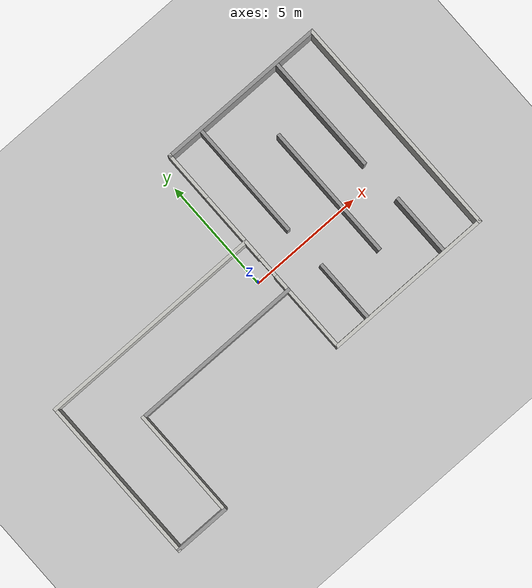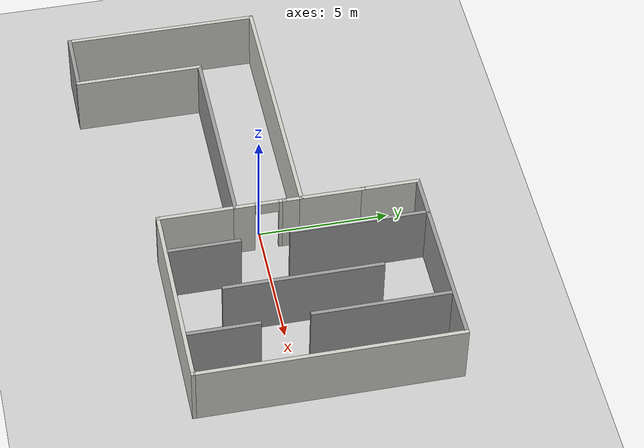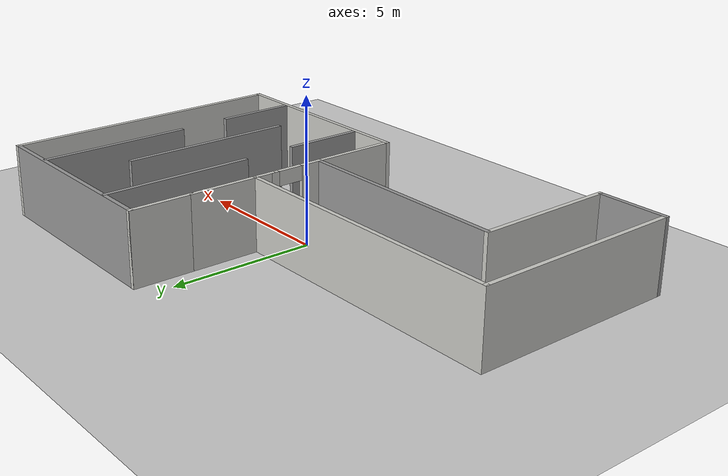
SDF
<sdf version="1.7">
 <world name="default">
  <model name="ground_plane">
   <static>1</static>
   <link name="link">
    <collision name="collision">
     <geometry><plane><normal>0 0 1</normal><size>100 100</size></plane></geometry>
     <surface><friction><ode><mu>100</mu><mu2>50</mu2></ode></friction></surface>
    </collision>
    <visual name="visual">
     <cast_shadows>0</cast_shadows>
     <geometry><plane><normal>0 0 1</normal><size>100 100</size></plane></geometry>
     <material>
      <script><uri>file://media/materials/scripts/gazebo.material</uri><name>Gazebo/Grey</name></script>
     </material>
    </visual>
   </link>
  </model>
  <light name="sun" type="directional">
   <pose>0 0 10 0 -0 0</pose>
   <diffuse>0.8 0.8 0.8 1</diffuse>
   <specular>0.2 0.2 0.2 1</specular>
   <attenuation>
    <range>1000</range>
    <constant>0.9</constant>
    <linear>0.01</linear>
    <quadratic>0.001</quadratic>
   </attenuation>
   <direction>-0.5 0.1 -0.9</direction>
   <spot><inner_angle>0</inner_angle><outer_angle>0</outer_angle><falloff>0</falloff></spot>
  </light>
  <scene><shadows>0</shadows><ambient>0.4 0.4 0.4 1</ambient><background>0.7 0.7 0.7 1</background></scene>
  <physics type="ode">
   <real_time_update_rate>1000</real_time_update_rate>
   <max_step_size>0.001</max_step_size>
   <real_time_factor>1</real_time_factor>
   <ode>
    <solver>
     <type>quick</type>
     <iters>150</iters>
     <precon_iters>0</precon_iters>
     <sor>1.4</sor>
     <use_dynamic_moi_rescaling>1</use_dynamic_moi_rescaling>
    </solver>
    <constraints>
     <cfm>1e-05</cfm>
     <erp>0.2</erp>
     <contact_max_correcting_vel>2000</contact_max_correcting_vel>
     <contact_surface_layer>0.01</contact_surface_layer>
    </constraints>
   </ode>
  </physics>
  <model name="turtlebot3_world"><static>1</static></model>
  <gravity>0 0 -9.8</gravity>
  <magnetic_field>6e-06 2.3e-05 -4.2e-05</magnetic_field>
  <atmosphere type="adiabatic"/>
  <audio><device>default</device></audio>
  <spherical_coordinates>
   <surface_model>EARTH_WGS84</surface_model>
   <latitude_deg>0</latitude_deg>
   <longitude_deg>0</longitude_deg>
   <elevation>0</elevation>
   <heading_deg>0</heading_deg>
  </spherical_coordinates>
  <model name="corridor.world">
   <pose>-0.5875 0.07602 0 0 -0 0</pose>
   <link name="Wall_23">
    <collision name="Wall_23_Collision">
     <geometry><box><size>7.41885 0.15 2.5</size></box></geometry>
     <pose>0 0 1.25 0 -0 0</pose>
    </collision>
    <visual name="Wall_23_Visual">
     <pose>0 0 1.25 0 -0 0</pose>
     <geometry><box><size>7.41885 0.15 2.5</size></box></geometry>
     <material>
      <script><uri>file://media/materials/scripts/gazebo.material</uri><name>Gazebo/CeilingTiled</name></script>
      <ambient>1 1 1 1</ambient>
     </material>
     <meta><layer>0</layer></meta>
    </visual>
    <pose>-8.6 -2.22468 0 0 -0 1.5708</pose>
   </link>
   <link name="Wall_24">
    <collision name="Wall_24_Collision">
     <geometry><box><size>10 0.15 2.5</size></box></geometry>
     <pose>0 0 1.25 0 -0 0</pose>
    </collision>
    <visual name="Wall_24_Visual">
     <pose>0 0 1.25 0 -0 0</pose>
     <geometry><box><size>10 0.15 2.5</size></box></geometry>
     <material>
      <script><uri>file://media/materials/scripts/gazebo.material</uri><name>Gazebo/CeilingTiled</name></script>
      <ambient>1 1 1 1</ambient>
     </material>
     <meta><layer>0</layer></meta>
    </visual>
    <pose>-3.675 1.40958 0 0 -0 -4.9e-05</pose>
   </link>
   <link name="Wall_26">
    <collision name="Wall_26_Collision">
     <geometry><box><size>7.65 0.15 2.5</size></box></geometry>
     <pose>0 0 1.25 0 -0 0</pose>
    </collision>
    <visual name="Wall_26_Visual">
     <pose>0 0 1.25 0 -0 0</pose>
     <geometry><box><size>7.65 0.15 2.5</size></box></geometry>
     <material>
      <script><uri>file://media/materials/scripts/gazebo.material</uri><name>Gazebo/Grey</name></script>
      <ambient>1 1 1 1</ambient>
     </material>
     <meta><layer>0</layer></meta>
    </visual>
    <pose>-2.5 -1.09018 0 0 -0 0</pose>
   </link>
   <link name="Wall_29">
    <pose>1.25 -0.165179 0 0 -0 1.5708</pose>
    <visual name="Wall_29_Visual_0">
     <pose>-0.592765 0 1.25 0 -0 0</pose>
     <geometry><box><size>0.814469 0.15 2.5</size></box></geometry>
     <material>
      <script><uri>file://media/materials/scripts/gazebo.material</uri><name>Gazebo/CeilingTiled</name></script>
      <ambient>1 1 1 1</ambient>
     </material>
     <meta><layer>0</layer></meta>
    </visual>
    <collision name="Wall_29_Collision_0">
     <geometry><box><size>0.814469 0.15 2.5</size></box></geometry>
     <pose>-0.592765 0 1.25 0 -0 0</pose>
    </collision>
    <visual name="Wall_29_Visual_1">
     <pose>0.857235 0 1.25 0 -0 0</pose>
     <geometry><box><size>0.285531 0.15 2.5</size></box></geometry>
     <material>
      <script><uri>file://media/materials/scripts/gazebo.material</uri><name>Gazebo/CeilingTiled</name></script>
      <ambient>1 1 1 1</ambient>
     </material>
     <meta><layer>0</layer></meta>
    </visual>
    <collision name="Wall_29_Collision_1">
     <geometry><box><size>0.285531 0.15 2.5</size></box></geometry>
     <pose>0.857235 0 1.25 0 -0 0</pose>
    </collision>
    <visual name="Wall_29_Visual_2">
     <pose>0.264469 0 2.25 0 -0 0</pose>
     <geometry><box><size>0.9 0.15 0.5</size></box></geometry>
     <material>
      <script><uri>file://media/materials/scripts/gazebo.material</uri><name>Gazebo/CeilingTiled</name></script>
      <ambient>1 1 1 1</ambient>
     </material>
     <meta><layer>0</layer></meta>
    </visual>
    <collision name="Wall_29_Collision_2">
     <geometry><box><size>0.9 0.15 0.5</size></box></geometry>
     <pose>0.264469 0 2.25 0 -0 0</pose>
    </collision>
   </link>
   <link name="Wall_31">
    <collision name="Wall_31_Collision">
     <geometry><box><size>0.799522 0.15 2.5</size></box></geometry>
     <pose>0 0 1.25 0 -0 0</pose>
    </collision>
    <visual name="Wall_31_Visual">
     <pose>0 0 1.25 0 -0 0</pose>
     <geometry><box><size>0.799522 0.15 2.5</size></box></geometry>
     <material>
      <script><uri>file://media/materials/scripts/gazebo.material</uri><name>Gazebo/CeilingTiled</name></script>
      <ambient>1 1 1 1</ambient>
     </material>
     <meta><layer>0</layer></meta>
    </visual>
    <pose>1.25 1.08458 0 0 -0 1.5708</pose>
   </link>
   <link name="Wall_32">
    <collision name="Wall_32_Collision">
     <geometry><box><size>2.5 0.15 2.5</size></box></geometry>
     <pose>0 0 1.25 0 -0 0</pose>
    </collision>
    <visual name="Wall_32_Visual">
     <pose>0 0 1.25 0 -0 0</pose>
     <geometry><box><size>2.5 0.15 2.5</size></box></geometry>
     <material>
      <script><uri>file://media/materials/scripts/gazebo.material</uri><name>Gazebo/CeilingTiled</name></script>
      <ambient>1 1 1 1</ambient>
     </material>
     <meta><layer>0</layer></meta>
    </visual>
    <pose>1.25 2.58434 0 0 -0 1.5708</pose>
   </link>
   <link name="Wall_33">
    <collision name="Wall_33_Collision">
     <geometry><box><size>2.25 0.15 2.5</size></box></geometry>
     <pose>0 0 1.25 0 -0 0</pose>
    </collision>
    <visual name="Wall_33_Visual">
     <pose>0 0 1.25 0 -0 0</pose>
     <geometry><box><size>2.25 0.15 2.5</size></box></geometry>
     <material>
      <script><uri>file://media/materials/scripts/gazebo.material</uri><name>Gazebo/CeilingTiled</name></script>
      <ambient>1 1 1 1</ambient>
     </material>
     <meta><layer>0</layer></meta>
    </visual>
    <pose>1.25 4.80934 0 0 -0 1.5708</pose>
   </link>
   <link name="Wall_34">
    <collision name="Wall_34_Collision">
     <geometry><box><size>7.5 0.15 2.5</size></box></geometry>
     <pose>0 0 1.25 0 -0 0</pose>
    </collision>
    <visual name="Wall_34_Visual">
     <pose>0 0 1.25 0 -0 0</pose>
     <geometry><box><size>7.5 0.15 2.5</size></box></geometry>
     <material>
      <script><uri>file://media/materials/scripts/gazebo.material</uri><name>Gazebo/Grey</name></script>
      <ambient>1 1 1 1</ambient>
     </material>
     <meta><layer>0</layer></meta>
    </visual>
    <pose>4.925 5.85934 0 0 -0 0</pose>
   </link>
   <link name="Wall_35">
    <collision name="Wall_35_Collision">
     <geometry><box><size>10 0.15 2.5</size></box></geometry>
     <pose>0 0 1.25 0 -0 0</pose>
    </collision>
    <visual name="Wall_35_Visual">
     <pose>0 0 1.25 0 -0 0</pose>
     <geometry><box><size>10 0.15 2.5</size></box></geometry>
     <material>
      <script><uri>file://media/materials/scripts/gazebo.material</uri><name>Gazebo/CeilingTiled</name></script>
      <ambient>1 1 1 1</ambient>
     </material>
     <meta><layer>0</layer></meta>
    </visual>
    <pose>8.6 0.934343 0 0 -0 -1.5708</pose>
   </link>
   <link name="Wall_36">
    <collision name="Wall_36_Collision">
     <geometry><box><size>7.5 0.15 2.5</size></box></geometry>
     <pose>0 0 1.25 0 -0 0</pose>
    </collision>
    <visual name="Wall_36_Visual">
     <pose>0 0 1.25 0 -0 0</pose>
     <geometry><box><size>7.5 0.15 2.5</size></box></geometry>
     <material>
      <script><uri>file://media/materials/scripts/gazebo.material</uri><name>Gazebo/CeilingTiled</name></script>
      <ambient>1 1 1 1</ambient>
     </material>
     <meta><layer>0</layer></meta>
    </visual>
    <pose>4.925 -3.99066 0 0 -0 3.14159</pose>
   </link>
   <link name="Wall_38">
    <collision name="Wall_38_Collision">
     <geometry><box><size>3.05048 0.15 2.5</size></box></geometry>
     <pose>0 0 1.25 0 -0 0</pose>
    </collision>
    <visual name="Wall_38_Visual">
     <pose>0 0 1.25 0 -0 0</pose>
     <geometry><box><size>3.05048 0.15 2.5</size></box></geometry>
     <material>
      <script><uri>file://media/materials/scripts/gazebo.material</uri><name>Gazebo/CeilingTiled</name></script>
      <ambient>1 1 1 1</ambient>
     </material>
     <meta><layer>0</layer></meta>
    </visual>
    <pose>1.25 -2.54042 0 0 -0 1.5708</pose>
   </link>
   <link name="Wall_6">
    <collision name="Wall_6_Collision">
     <geometry><box><size>2.5 0.15 2.5</size></box></geometry>
     <pose>0 0 1.25 0 -0 0</pose>
    </collision>
    <visual name="Wall_6_Visual">
     <pose>0 0 1.25 0 -0 0</pose>
     <geometry><box><size>2.5 0.15 2.5</size></box></geometry>
     <material>
      <script><uri>file://media/materials/scripts/gazebo.material</uri><name>Gazebo/Grey</name></script>
      <ambient>1 1 1 1</ambient>
     </material>
     <meta><layer>0</layer></meta>
    </visual>
    <pose>-7.425 -5.85918 0 0 -0 0</pose>
   </link>
   <link name="Wall_7">
    <collision name="Wall_7_Collision">
     <geometry><box><size>4.91933 0.15 2.5</size></box></geometry>
     <pose>0 0 1.25 0 -0 0</pose>
    </collision>
    <visual name="Wall_7_Visual">
     <pose>0 0 1.25 0 -0 0</pose>
     <geometry><box><size>4.91933 0.15 2.5</size></box></geometry>
     <material>
      <script><uri>file://media/materials/scripts/gazebo.material</uri><name>Gazebo/CeilingTiled</name></script>
      <ambient>1 1 1 1</ambient>
     </material>
     <meta><layer>0</layer></meta>
    </visual>
    <pose>-6.25 -3.47468 0 0 -0 1.5708</pose>
   </link>
   <static>1</static>
  </model>
  <model name="corridor.world_0">
   <pose>3.14339 1.04938 0 0 -0 0</pose>
   <link name="Wall_13">
    <collision name="Wall_13_Collision">
     <geometry><box><size>5.25 0.15 2.5</size></box></geometry>
     <pose>0 0 1.25 0 -0 0</pose>
    </collision>
    <visual name="Wall_13_Visual">
     <pose>0 0 1.25 0 -0 0</pose>
     <geometry><box><size>5.25 0.15 2.5</size></box></geometry>
     <material>
      <script><uri>file://media/materials/scripts/gazebo.material</uri><name>Gazebo/Grey</name></script>
      <ambient>1 1 1 1</ambient>
     </material>
     <meta><layer>0</layer></meta>
    </visual>
    <pose>-0.92166 2.2973 0 0 -0 1.5708</pose>
   </link>
   <link name="Wall_16">
    <collision name="Wall_16_Collision">
     <geometry><box><size>6 0.15 2.5</size></box></geometry>
     <pose>0 0 1.25 0 -0 0</pose>
    </collision>
    <visual name="Wall_16_Visual">
     <pose>0 0 1.25 0 -0 0</pose>
     <geometry><box><size>6 0.15 2.5</size></box></geometry>
     <material>
      <script><uri>file://media/materials/scripts/gazebo.material</uri><name>Gazebo/Grey</name></script>
      <ambient>1 1 1 1</ambient>
     </material>
     <meta><layer>0</layer></meta>
    </visual>
    <pose>1.23241 -0.25289 0 0 -0 1.5708</pose>
   </link>
   <link name="Wall_18">
    <collision name="Wall_18_Collision">
     <geometry><box><size>2.75 0.15 2.5</size></box></geometry>
     <pose>0 0 1.25 0 -0 0</pose>
    </collision>
    <visual name="Wall_18_Visual">
     <pose>0 0 1.25 0 -0 0</pose>
     <geometry><box><size>2.75 0.15 2.5</size></box></geometry>
     <material>
      <script><uri>file://media/materials/scripts/gazebo.material</uri><name>Gazebo/Grey</name></script>
      <ambient>1 1 1 1</ambient>
     </material>
     <meta><layer>0</layer></meta>
    </visual>
    <pose>3.06839 -3.5473 0 0 -0 -1.5708</pose>
   </link>
   <link name="Wall_2">
    <collision name="Wall_2_Collision">
     <geometry><box><size>2.75 0.15 2.5</size></box></geometry>
     <pose>0 0 1.25 0 -0 0</pose>
    </collision>
    <visual name="Wall_2_Visual">
     <pose>0 0 1.25 0 -0 0</pose>
     <geometry><box><size>2.75 0.15 2.5</size></box></geometry>
     <material>
      <script><uri>file://media/materials/scripts/gazebo.material</uri><name>Gazebo/Grey</name></script>
      <ambient>1 1 1 1</ambient>
     </material>
     <meta><layer>0</layer></meta>
    </visual>
    <pose>-0.863391 -3.52938 0 0 -0 -1.5708</pose>
   </link>
   <link name="Wall_20">
    <collision name="Wall_20_Collision">
     <geometry><box><size>5.25 0.15 2.5</size></box></geometry>
     <pose>0 0 1.25 0 -0 0</pose>
    </collision>
    <visual name="Wall_20_Visual">
     <pose>0 0 1.25 0 -0 0</pose>
     <geometry><box><size>5.25 0.15 2.5</size></box></geometry>
     <material>
      <script><uri>file://media/materials/scripts/gazebo.material</uri><name>Gazebo/Grey</name></script>
      <ambient>1 1 1 1</ambient>
     </material>
     <meta><layer>0</layer></meta>
    </visual>
    <pose>3.00667 2.25097 0 0 -0 1.5708</pose>
   </link>
   <static>1</static>
  </model>
 </world>
</sdf>
